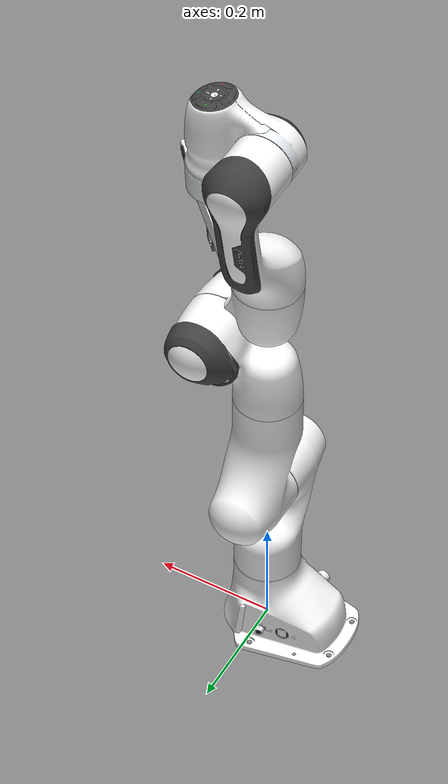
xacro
<?xml version="1.0"?>
<robot xmlns:xacro="http://www.ros.org/wiki/xacro" name="panda">
    <xacro:arg name="initial_positions_file" default="initial_positions.yaml" />

    <!-- Import panda urdf file -->
    <xacro:include filename="$(find robot_description)/urdf/panda.urdf" />

    <!-- Import control_xacro -->
    <xacro:include filename="panda.ros2_control.xacro" />

    <xacro:panda_ros2_control name="FakeSystem" initial_positions_file="$(arg initial_positions_file)"/>

</robot>

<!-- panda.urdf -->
<robot name="panda" xmlns:xacro="http://www.ros.org/wiki/xacro">

    <link name="world"/>
    <joint name="connect_root_and_world" type="fixed">
      <child link="panda_link0" />
      <parent link="world" />
      <origin xyz="0 0 0" rpy="0 0 0" />
    </joint>

    <link name="panda_link0">
        <visual>
            <geometry>
                <mesh filename="package://robot_description/meshes/visual/link0.dae" />
            </geometry>
        </visual>
        <collision>
            <geometry>
                <mesh filename="package://robot_description/meshes/collision/link0.stl" />
            </geometry>
        </collision>
	    <inertial>
		  <origin xyz="0 0 0.32"/>
		  <mass value="50"/>
		  <inertia ixx="0.2" ixy="0" ixz="0" iyy="0.2" iyz="0" izz="0.4" />
	    </inertial>
    </link>
    <link name="panda_link1">
        <visual>
            <geometry>
                <mesh filename="package://robot_description/meshes/visual/link1.dae" />
            </geometry>
        </visual>
        <collision>
            <geometry>
                <mesh filename="package://robot_description/meshes/collision/link1.stl" />
            </geometry>
        </collision>
	    <inertial>
		  <origin xyz="0 0 0.32"/>
		  <mass value="0.5"/>
		  <inertia ixx="0.002" ixy="0" ixz="0" iyy="0.002" iyz="0" izz="0.002" />
	    </inertial>
    </link>
    <joint name="panda_joint1" type="revolute">
        <safety_controller k_position="100.0" k_velocity="40.0" soft_lower_limit="-2.8973" soft_upper_limit="2.8973" />
        <origin rpy="0 0 0" xyz="0 0 0.333" />
        <parent link="panda_link0" />
        <child link="panda_link1" />
        <axis xyz="0 0 1" />
        <limit effort="87" lower="-2.9671" upper="2.9671" velocity="2.3925" />
    </joint>
    <link name="panda_link2">
        <visual>
            <geometry>
                <mesh filename="package://robot_description/meshes/visual/link2.dae" />
            </geometry>
        </visual>
        <collision>
            <geometry>
                <mesh filename="package://robot_description/meshes/collision/link2.stl" />
            </geometry>
        </collision>
	    <inertial>
		  <origin xyz="0 0 0.32"/>
		  <mass value="0.5"/>
		  <inertia ixx="0.002" ixy="0" ixz="0" iyy="0.002" iyz="0" izz="0.002" />
	    </inertial>
    </link>
    <joint name="panda_joint2" type="revolute">
        <safety_controller k_position="100.0" k_velocity="40.0" soft_lower_limit="-1.7628" soft_upper_limit="1.7628" />
        <origin rpy="-1.57079632679 0 0" xyz="0 0 0" />
        <parent link="panda_link1" />
        <child link="panda_link2" />
        <axis xyz="0 0 1" />
        <limit effort="87" lower="-1.8326" upper="1.8326" velocity="2.3925" />
    </joint>
    <link name="panda_link3">
        <visual>
            <geometry>
                <mesh filename="package://robot_description/meshes/visual/link3.dae" />
            </geometry>
        </visual>
        <collision>
            <geometry>
                <mesh filename="package://robot_description/meshes/collision/link3.stl" />
            </geometry>
        </collision>
	    <inertial>
		  <origin xyz="0 0 0.32"/>
		  <mass value="0.5"/>
		  <inertia ixx="0.002" ixy="0" ixz="0" iyy="0.002" iyz="0" izz="0.002" />
	    </inertial>
    </link>
    <joint name="panda_joint3" type="revolute">
        <safety_controller k_position="100.0" k_velocity="40.0" soft_lower_limit="-2.8973" soft_upper_limit="2.8973" />
        <origin rpy="1.57079632679 0 0" xyz="0 -0.316 0" />
        <parent link="panda_link2" />
        <child link="panda_link3" />
        <axis xyz="0 0 1" />
        <limit effort="87" lower="-2.9671" upper="2.9671" velocity="2.3925" />
    </joint>
    <link name="panda_link4">
        <visual>
            <geometry>
                <mesh filename="package://robot_description/meshes/visual/link4.dae" />
            </geometry>
        </visual>
        <collision>
            <geometry>
                <mesh filename="package://robot_description/meshes/collision/link4.stl" />
            </geometry>
        </collision>
	    <inertial>
		  <origin xyz="0 0 0.32"/>
		  <mass value="0.5"/>
		  <inertia ixx="0.002" ixy="0" ixz="0" iyy="0.002" iyz="0" izz="0.002" />
	    </inertial>
    </link>
    <joint name="panda_joint4" type="revolute">
        <safety_controller k_position="100.0" k_velocity="40.0" soft_lower_limit="-3.0718" soft_upper_limit="0.0175" />
        <origin rpy="1.57079632679 0 0" xyz="0.0825 0 0" />
        <parent link="panda_link3" />
        <child link="panda_link4" />
        <axis xyz="0 0 1" />
        <limit effort="87" lower="-3.1416" upper="0.0873" velocity="2.3925" />
    </joint>
    <link name="panda_link5">
        <visual>
            <geometry>
                <mesh filename="package://robot_description/meshes/visual/link5.dae" />
            </geometry>
        </visual>
        <collision>
            <geometry>
                <mesh filename="package://robot_description/meshes/collision/link5.stl" />
            </geometry>
        </collision>
	    <inertial>
		  <origin xyz="0 0 0.32"/>
		  <mass value="0.5"/>
		  <inertia ixx="0.002" ixy="0" ixz="0" iyy="0.002" iyz="0" izz="0.002" />
	    </inertial>
    </link>
    <joint name="panda_joint5" type="revolute">
        <safety_controller k_position="100.0" k_velocity="40.0" soft_lower_limit="-2.8973" soft_upper_limit="2.8973" />
        <origin rpy="-1.57079632679 0 0" xyz="-0.0825 0.384 0" />
        <parent link="panda_link4" />
        <child link="panda_link5" />
        <axis xyz="0 0 1" />
        <limit effort="12" lower="-2.9671" upper="2.9671" velocity="2.8710" />
    </joint>
    <link name="panda_link6">
        <visual>
            <geometry>
                <mesh filename="package://robot_description/meshes/visual/link6.dae" />
            </geometry>
        </visual>
        <collision>
            <geometry>
                <mesh filename="package://robot_description/meshes/collision/link6.stl" />
            </geometry>
        </collision>
	    <inertial>
		  <origin xyz="0 0 0.32"/>
		  <mass value="0.5"/>
		  <inertia ixx="0.002" ixy="0" ixz="0" iyy="0.002" iyz="0" izz="0.002" />
	    </inertial>
    </link>
    <joint name="panda_joint6" type="revolute">
        <safety_controller k_position="100.0" k_velocity="40.0" soft_lower_limit="-0.0175" soft_upper_limit="3.7525" />
        <origin rpy="1.57079632679 0 0" xyz="0 0 0" />
        <parent link="panda_link5" />
        <child link="panda_link6" />
        <axis xyz="0 0 1" />
        <limit effort="12" lower="-0.0873" upper="3.8223" velocity="2.8710" />
    </joint>
    <link name="panda_link7">
        <visual>
            <geometry>
                <mesh filename="package://robot_description/meshes/visual/link7.dae" />
            </geometry>
        </visual>
        <collision>
            <geometry>
                <mesh filename="package://robot_description/meshes/collision/link7.stl" />
            </geometry>
        </collision>
	    <inertial>
		  <origin xyz="0 0 0.32"/>
		  <mass value="0.5"/>
		  <inertia ixx="0.002" ixy="0" ixz="0" iyy="0.002" iyz="0" izz="0.002" />
	    </inertial>
    </link>
    <joint name="panda_joint7" type="revolute">
        <safety_controller k_position="100.0" k_velocity="40.0" soft_lower_limit="-2.8973" soft_upper_limit="2.8973" />
        <origin rpy="1.57079632679 0 0" xyz="0.088 0 0" />
        <parent link="panda_link6" />
        <child link="panda_link7" />
        <axis xyz="0 0 1" />
        <limit effort="12" lower="-2.9671" upper="2.9671" velocity="2.8710" />
    </joint>
    <link name="panda_link8" />
    <joint name="panda_joint8" type="fixed">
        <origin rpy="0 0 0" xyz="0 0 0.107" />
        <parent link="panda_link7" />
        <child link="panda_link8" />
        <axis xyz="0 0 0" />
    </joint>
    <joint name="panda_hand_joint" type="fixed">
        <parent link="panda_link8" />
        <child link="panda_hand" />
        <origin rpy="0 0 -0.785398163397" xyz="0 0 0" />
    </joint>
    <link name="panda_hand">
        <visual>
            <geometry>
                <mesh filename="package://robot_description/meshes/visual/hand.dae" />
            </geometry>
        </visual>
        <collision>
            <geometry>
                <mesh filename="package://robot_description/meshes/collision/hand.stl" />
            </geometry>
        </collision>
	    <inertial>
		  <origin xyz="0 0 0.32"/>
		  <mass value="0.5"/>
		  <inertia ixx="0.002" ixy="0" ixz="0" iyy="0.002" iyz="0" izz="0.002" />
	    </inertial>
    </link>
    <link name="panda_leftfinger">
        <visual>
            <geometry>
                <mesh filename="package://robot_description/meshes/visual/finger.dae" />
            </geometry>
        </visual>
        <collision>
            <geometry>
                <mesh filename="package://robot_description/meshes/collision/finger.stl" />
            </geometry>
        </collision>
	    <inertial>
		  <origin xyz="0 0 0.32"/>
		  <mass value="0.5"/>
		  <inertia ixx="0.002" ixy="0" ixz="0" iyy="0.002" iyz="0" izz="0.002" />
	    </inertial>
    </link>
    <link name="panda_rightfinger">
        <visual>
            <origin rpy="0 0 3.14159265359" xyz="0 0 0" />
            <geometry>
                <mesh filename="package://robot_description/meshes/visual/finger.dae" />
            </geometry>
        </visual>
        <collision>
            <origin rpy="0 0 3.14159265359" xyz="0 0 0" />
            <geometry>
                <mesh filename="package://robot_description/meshes/collision/finger.stl" />
            </geometry>
        </collision>
	    <inertial>
		  <origin xyz="0 0 0.32"/>
		  <mass value="0.5"/>
		  <inertia ixx="0.002" ixy="0" ixz="0" iyy="0.002" iyz="0" izz="0.002" />
	    </inertial>
    </link>
    <joint name="panda_finger_joint1" type="prismatic">
        <parent link="panda_hand" />
        <child link="panda_leftfinger" />
        <origin rpy="0.0 0.0 0.0" xyz="0.0 0.0 0.0584" />
        <axis xyz="0 1 0" />
        <limit effort="40.0" lower="0.0" upper="0.04" velocity="100.0" />
    </joint>
    <joint name="panda_finger_joint2" type="prismatic">
        <parent link="panda_hand" />
        <child link="panda_rightfinger" />
        <origin rpy="0.0 0.0 0.0" xyz="0.0 0.0 0.0584" />
        <axis xyz="0 -1 0" />
        <limit effort="40.0" lower="0.0" upper="0.04" velocity="100.0" />
        <mimic joint="panda_finger_joint1" />
    </joint>

    <!-- https://github.com/ros-controls/gazebo_ros2_control/issues/173#issuecomment-1536332488 -->
    <joint name="panda_finger_joint2_mimic" type="fixed">
        <parent link="panda_hand" />
        <child link="random" />
    </joint>
    <link name="random"/>
</robot>
